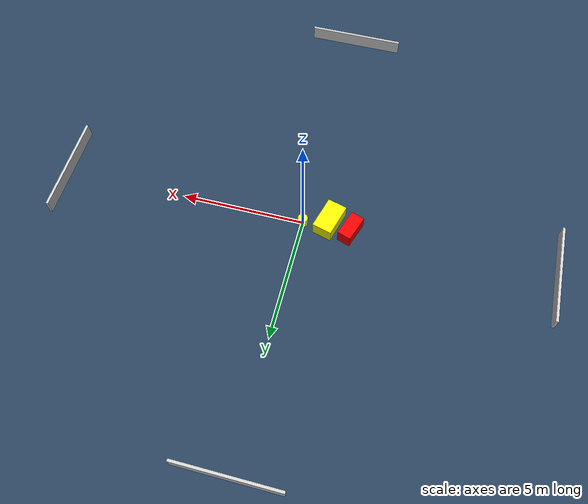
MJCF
<?xml version="1.0" ?>
<mujoco model="generated_environment">
  <option timestep="0.01" integrator="RK4" cone="elliptic"/>
  <default>
    <geom density="1"/>
  </default>
  <asset>
    <texture builtin="gradient" height="3072" name="skybox" rgb1="0.3 0.5 0.7" rgb2="0 0 0" type="skybox" width="512"/>
    <texture builtin="checker" height="300" name="groundplane" rgb1="0.2 0.3 0.4" rgb2="0.1 0.2 0.3" type="2d" width="300"/>
    <material name="groundplane" reflectance="0.2" texrepeat="5 5" texture="groundplane"/>
  </asset>
  <worldbody>
    <light dir="0 0 -1" directional="true" pos="0 0 1.5"/>
    <geom condim="3" friction="0.5 0.005 0.001" material="groundplane" name="floor" pos="0 0 0" size="0 0 0.05" type="plane"/>
    <body name="walls">
      <geom name="wall_1" condim="4" pos="-10.0 0.0 0.3" rgba="0.800000011920929 0.800000011920929 0.800000011920929 1.0" size="0.05 2.0 0.3" type="box"/>
      <geom name="wall_2" condim="4" pos="10.0 0.0 0.3" rgba="0.800000011920929 0.800000011920929 0.800000011920929 1.0" size="0.05 2.0 0.3" type="box"/>
      <geom name="wall_3" condim="4" pos="0.0 -10.0 0.3" rgba="0.800000011920929 0.800000011920929 0.800000011920929 1.0" size="2.0 0.05 0.3" type="box"/>
      <geom name="wall_4" condim="4" pos="0.0 10.0 0.3" rgba="0.800000011920929 0.800000011920929 0.800000011920929 1.0" size="2.0 0.05 0.3" type="box"/>
    </body>
    <body name="robot">
      <joint name="joint_x" type="slide" pos="0 0 0" axis="1 0 0"/>
      <joint name="joint_y" type="slide" pos="0 0 0" axis="0 1 0"/>
      <geom name="robot" type="cylinder" pos="0.0 0.0 0.2" size="0.2 0.2 0.0" mass="5.0" friction="1.0 0.005 0.0001" condim="4" rgba="1.0 1.0 0.0 1.0"/>
    </body>
    <body name="obstacle_1_movable">
      <geom name="obstacle_1_movable" condim="4" pos="-1.0293971929358225 -0.23504755483003517 0.3" euler="0 0 254.4329147123333" friction="0.0 0.005 0.001" rgba="1.0 1.0 0.0 1.0" size="0.6611768852516895 0.3971536813329533 0.3" type="box" mass="0.1"/>
      <joint type="free"/>
    </body>
    <body name="obstacle_2_static">
      <geom name="obstacle_2_static" condim="4" pos="-1.930323059251468 -0.03249449674721953 0.3" euler="0 0 71.20607949057846" friction="0.0 0.005 0.001" rgba="1.0 0.0 0.0 1.0" size="0.5394507830113686 0.27609652436529697 0.3" type="box"/>
    </body>
  </worldbody>
  <actuator>
    <motor name="actuator_x" joint="joint_x" gear="1" ctrlrange="-1 1"/>
    <motor name="actuator_y" joint="joint_y" gear="1" ctrlrange="-1 1"/>
  </actuator>
</mujoco>
